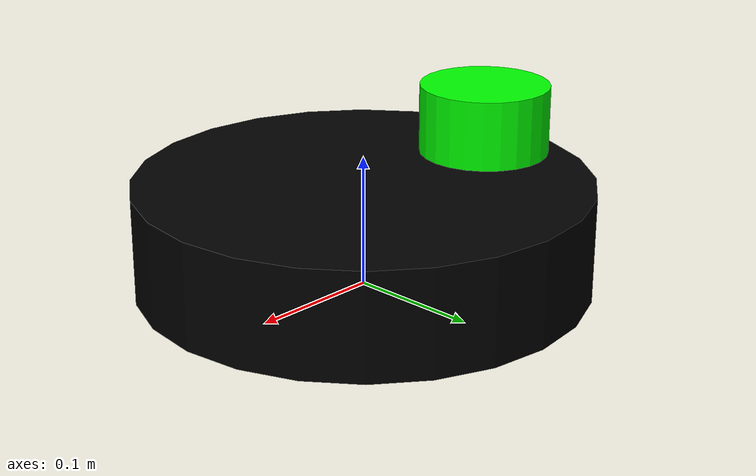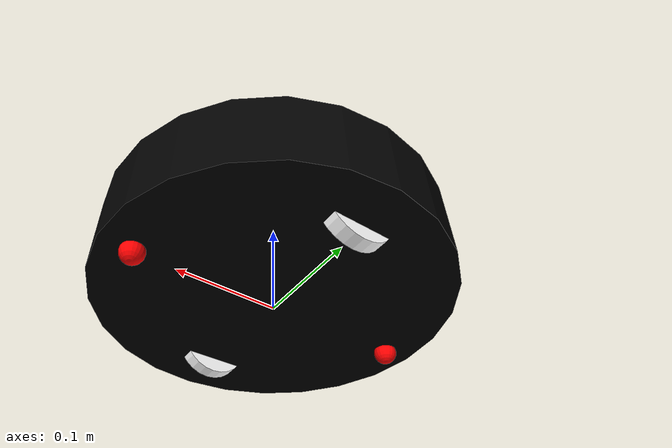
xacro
<?xml version="1.0"?>
<robot xmlns:xacro="http://www.ros.org/wiki/xacro" name="robot">

    <xacro:arg name="use_ros2_control" default="true"/>
    <xacro:arg name="sim_mode" default="false"/>

    <xacro:include filename="robot_core.xacro"/>

    <xacro:if value="$(arg use_ros2_control)">
        <xacro:include filename="ros2_control.xacro" />
    </xacro:if>
    <xacro:unless value="$(arg use_ros2_control)">
        <xacro:include filename="gazebo_control.xacro" />
    </xacro:unless>

    <xacro:include filename="lidar.xacro"/>

</robot>

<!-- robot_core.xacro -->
<robot xmlns:xacro="http://www.ros.org/wiki/xacro">

    <xacro:include filename="inertial_macros.xacro"/>

    <material name="black">
        <color rgba="0 0 0 1"/>
    </material>

    <material name="white">
        <color rgba="1 1 1 1"/>
    </material>

    <material name="red">
        <color rgba="1 0 0 1"/>
    </material>

    <material name="green">
        <color rgba="0 1 0 1"/>
    </material>

    <xacro:property name="wheel_radius" value="0.035"/>

    <!-- BASE LINK -->
    <link name="base_link">
    </link>

    <!-- BASE_FOOTPRINT LINK -->
    <joint name="base_footprint_joint" type="fixed">
        <parent link="base_link"/>
        <child link="base_footprint"/>
        <origin rpy="0 0 0" xyz="0 0 0"/>
    </joint>

    <link name="base_footprint">
    </link>

    <!-- CHASSIS LINK -->
    <joint name="chassis_joint" type="fixed">
        <parent link="base_link"/>
        <child link="chassis"/>
        <origin rpy="0 0 0" xyz="0 0 0"/>
    </joint>

    <link name="chassis">
        <visual>
          <origin rpy="0 0 0" xyz="0 0 0.043"/>
          <geometry>
            <cylinder length="0.08" radius="0.171"/>
          </geometry>
          <material name="black"/>
        </visual>
        <collision>
          <origin rpy="0 0 0" xyz="0 0 0.043"/>
          <geometry>
            <cylinder length="0.08" radius="0.171"/>
          </geometry>
        </collision>
        <xacro:inertial_cylinder mass="3.6" length="0.08" radius="0.171">
            <origin rpy="0 0 0" xyz="0 0 0.043"/>
        </xacro:inertial_cylinder>
    </link>

    <gazebo reference="chassis">
        <material>Gazebo/Black</material>
    </gazebo>

    <!-- LEFT WHEEL LINK -->

    <joint name="left_wheel_joint" type="continuous">
        <parent link="base_link"/>
        <child link="left_wheel"/>
        <origin rpy="-${pi/2} 0 0" xyz="0 0.12 ${wheel_radius - 0.0114}"/>
        <axis xyz="0 0 1"/>
    </joint>

    <link name="left_wheel">
        <visual>
            <geometry>
                <cylinder length="0.0147" radius="${wheel_radius}"/>
            </geometry>
            <material name="white"/>
        </visual>
        <collision>
            <geometry>
                <cylinder length="0.0147" radius="${wheel_radius}"/>
            </geometry>
        </collision>
        <xacro:inertial_cylinder mass="0.1" length="0.0147" radius="${wheel_radius}">
            <origin rpy="0 0 0" xyz="0 0 0"/>
        </xacro:inertial_cylinder>
    </link>
    <gazebo reference="left_wheel">
        <material>Gazebo/White</material>
    </gazebo>

    <!-- RIGHT WHEEL LINK -->
    <joint name="right_wheel_joint" type="continuous">
        <parent link="base_link"/>
        <child link="right_wheel"/>
        <origin rpy="${pi/2} 0 0" xyz="0 -0.12 ${wheel_radius - 0.0114}"/>
        <axis xyz="0 0 -1"/>
    </joint>

    <link name="right_wheel">
        <visual>
            <geometry>
                <cylinder length="0.0147" radius="${wheel_radius}"/>
            </geometry>
            <material name="white"/>
        </visual>
        <collision>
            <geometry>
                <cylinder length="0.0147" radius="${wheel_radius}"/>
            </geometry>
        </collision>
        <xacro:inertial_cylinder mass="0.1" length="0.0147" radius="${wheel_radius}">
            <origin rpy="0 0 0" xyz="0 0 0"/>
        </xacro:inertial_cylinder>
    </link>
    <gazebo reference="right_wheel">
        <material>Gazebo/White</material>
    </gazebo>

    <!-- FRONT CASTER WHEEL LINK -->
    <joint name="caster_wheel_joint" type="fixed">
        <parent link="chassis"/>
        <child link="caster_wheel"/>
        <origin xyz="0.14 0 0"/>
    </joint>

    <link name="caster_wheel">
        <visual>
            <geometry>
                <sphere radius="0.0114"/>
            </geometry>
            <material name="red"/>
        </visual>
        <collision>
            <geometry>
                <sphere radius="0.0114"/>
            </geometry>
        </collision>
        <xacro:inertial_sphere mass="0.1" radius="0.0114">
            <origin rpy="0 0 0" xyz="0 0 0"/>
        </xacro:inertial_sphere>
    </link>

    <gazebo reference="caster_wheel">
        <material>Gazebo/Red</material>
        <mu1 value="0.001"/>
        <mu2 value="0.001"/>
    </gazebo>

    <!-- BACK CASTER WHEEL LINK (Real robot does not have this, only for simulation purposes) -->
    <joint name="back_caster_wheel_joint" type="fixed">
        <parent link="chassis"/>
        <child link="back_caster_wheel"/>
        <origin xyz="-0.14 0 0"/>
    </joint>

    <link name="back_caster_wheel">
        <visual>
            <geometry>
                <sphere radius="0.0114"/>
            </geometry>
            <material name="red"/>
        </visual>
        <collision>
            <geometry>
                <sphere radius="0.0114"/>
            </geometry>
        </collision>
        <xacro:inertial_sphere mass="0.1" radius="0.0114">
            <origin rpy="0 0 0" xyz="0 0 0"/>
        </xacro:inertial_sphere>
    </link>

    <gazebo reference="back_caster_wheel">
        <material>Gazebo/Red</material>
        <mu1 value="0.001"/>
        <mu2 value="0.001"/>
    </gazebo>

</robot>

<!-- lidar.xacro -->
<robot xmlns:xacro="http://www.ros.org/wiki/xacro">

    <joint name="laser_joint" type="fixed">
        <parent link="chassis"/>
        <child link="laser_frame"/>
        <!-- LIDAR is rotated a bit more than 90 degress ~pi/2 -->
        <origin rpy="0 0 -1.4052" xyz="-0.112 0.02 0.108"/>
    </joint>

    <link name="laser_frame">
        <visual>
            <geometry>
              <cylinder length="0.056" radius="0.05"/>
            </geometry>
            <material name="green"/>
        </visual>
        <collision>
            <geometry>
                <cylinder length="0.056" radius="0.05"/>
            </geometry>
        </collision>
        <xacro:inertial_cylinder mass="0.1" length="0.056" radius="0.05">
            <origin rpy="0 0 0" xyz="0 0 0"/>
        </xacro:inertial_cylinder>
    </link>

    <gazebo reference="laser_frame">
        <material>Gazebo/Green</material>

        <sensor type="ray" name="laser">
            <pose>0 0 0 0 0 0</pose>
            <visualize>true</visualize>
            <update_rate>10</update_rate>
            <ray>
                <scan>
                    <horizontal>
                        <samples>360</samples>
                        <min_angle>-3.14</min_angle>
                        <max_angle>3.14</max_angle>
                    </horizontal>
                </scan>
                <range>
                    <min>0.3</min>
                    <max>12</max>
                </range>
            </ray>
            <plugin name="laser_controller" filename="libgazebo_ros_ray_sensor.so">
                <ros>
                    <argument>~/out:=scan</argument>
                </ros>
                <output_type>sensor_msgs/LaserScan</output_type>
                <frame_name>laser_frame</frame_name>
            </plugin>
        </sensor>
    </gazebo>
</robot>
